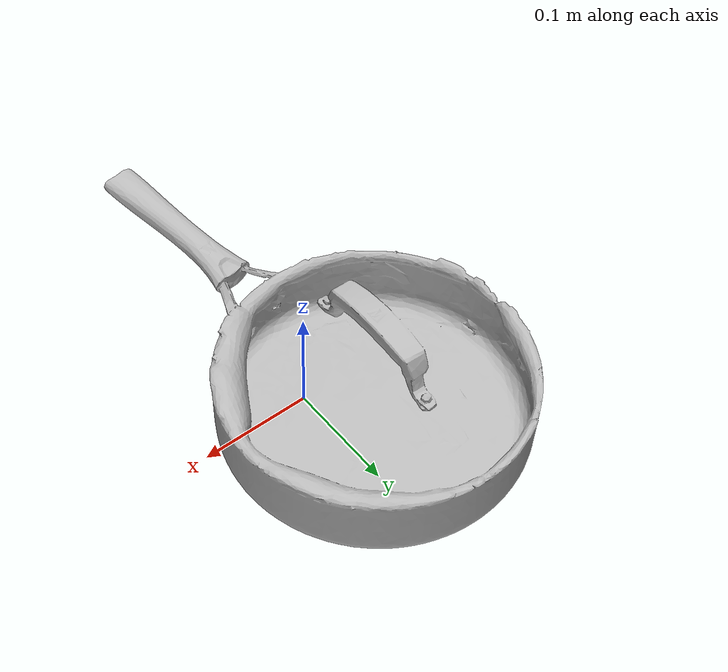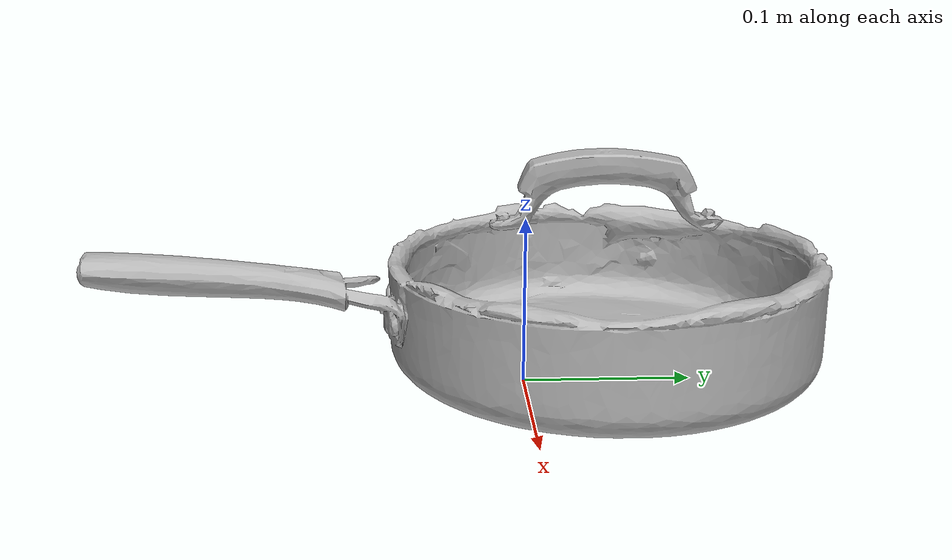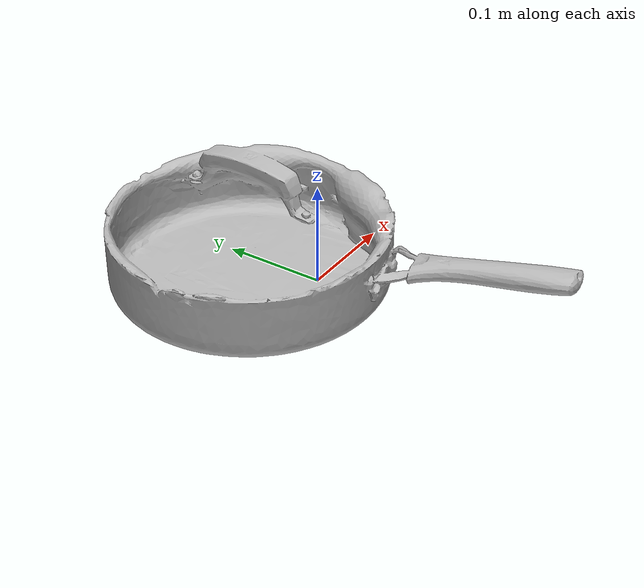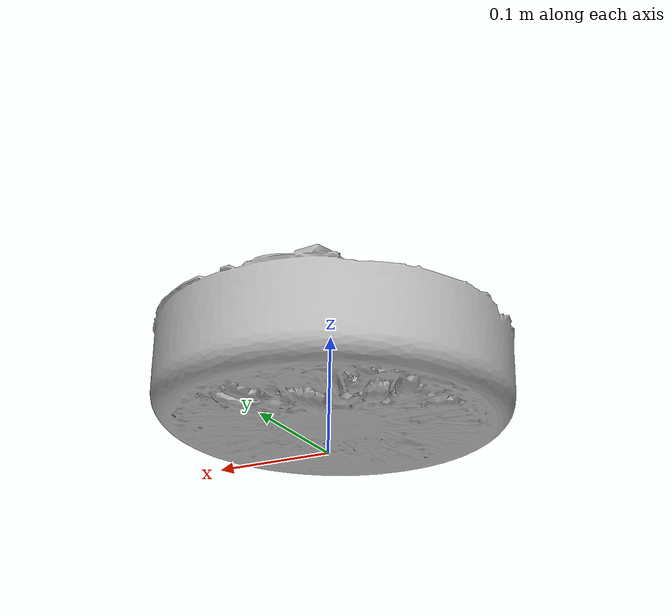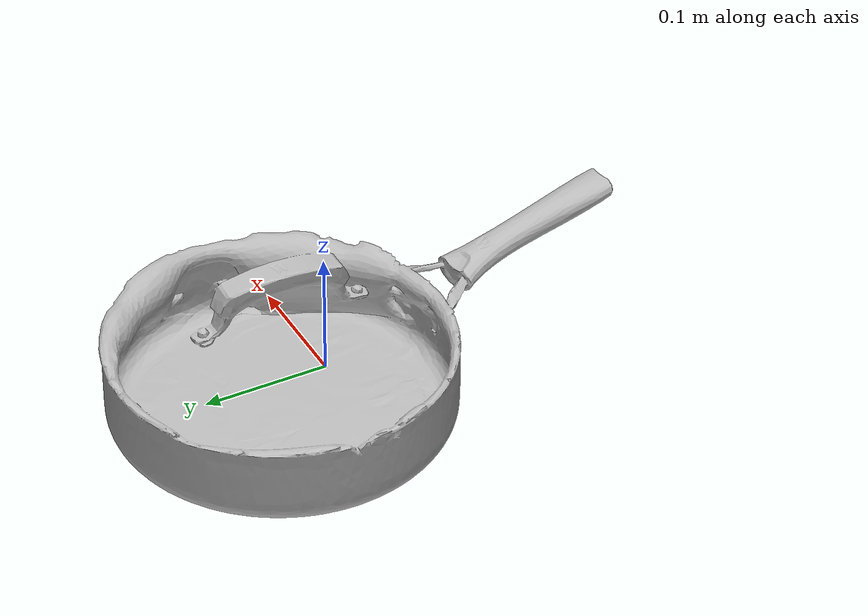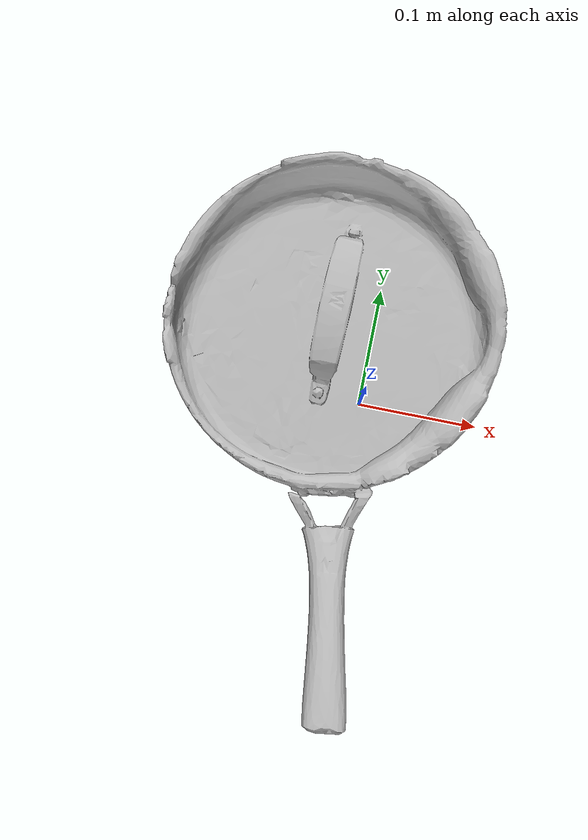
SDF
<?xml version="1.0" ?>
<sdf version="1.4">
  <model name='ycb_027_skillet'>
    <link name='body'>
      <inertial>
        <mass>0.95</mass>
        <pose>-0.00676357282935 0.0245110887492 0.0383163513123 0 0 0</pose>
        <inertia>
          <ixx>0.0103237057941</ixx>
          <ixy>0.000765923528829</ixy>
          <ixz>-0.000298767107818</ixz>
          <iyy>0.00603076949646</iyy>
          <iyz>0.00066794451963</iyz>
          <izz>0.0143210435031</izz>
        </inertia>
      </inertial>
      <visual name='ycb_027_skillet_visual'>
        <pose>0 0 0 0 0 0</pose>
        <geometry>
          <mesh>
            <uri>model://ycb_027_skillet/meshes/ycb_027_skillet.dae</uri>
          </mesh>
        </geometry>
      </visual>
      <collision name='ycb_027_skillet_collision'>
        <pose>0 0 0 0 0 0</pose>
        <geometry>
          <mesh>
            <uri>model://ycb_027_skillet/meshes/ycb_027_skillet.stl</uri>
          </mesh>
        </geometry>
        <max_contacts>10</max_contacts>
        <surface>
          <contact>
            <ode>
              <kp>1e15</kp>
              <kd>1e13</kd>
            </ode>
          </contact>
        </surface>
      </collision>
    </link>
  </model>
</sdf>
